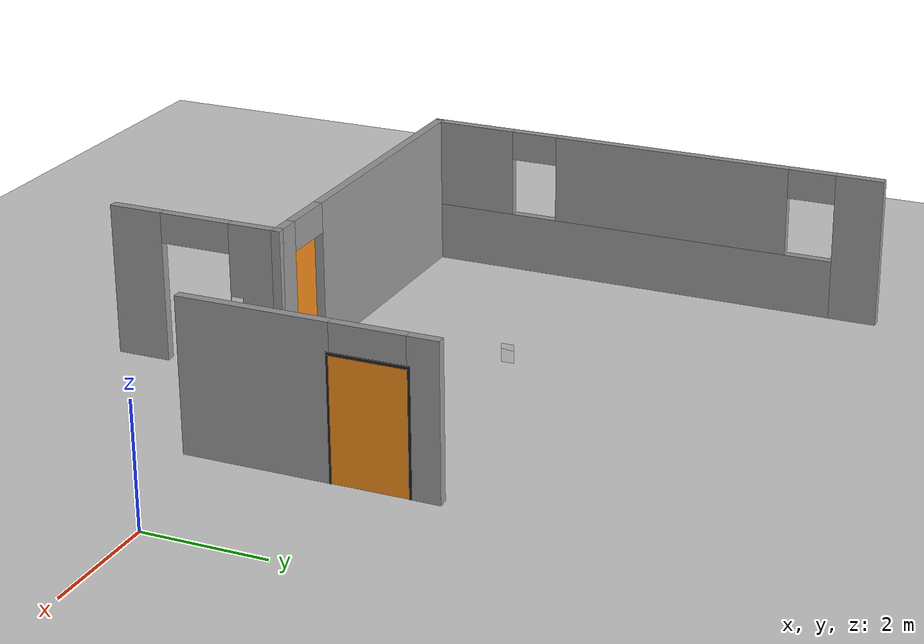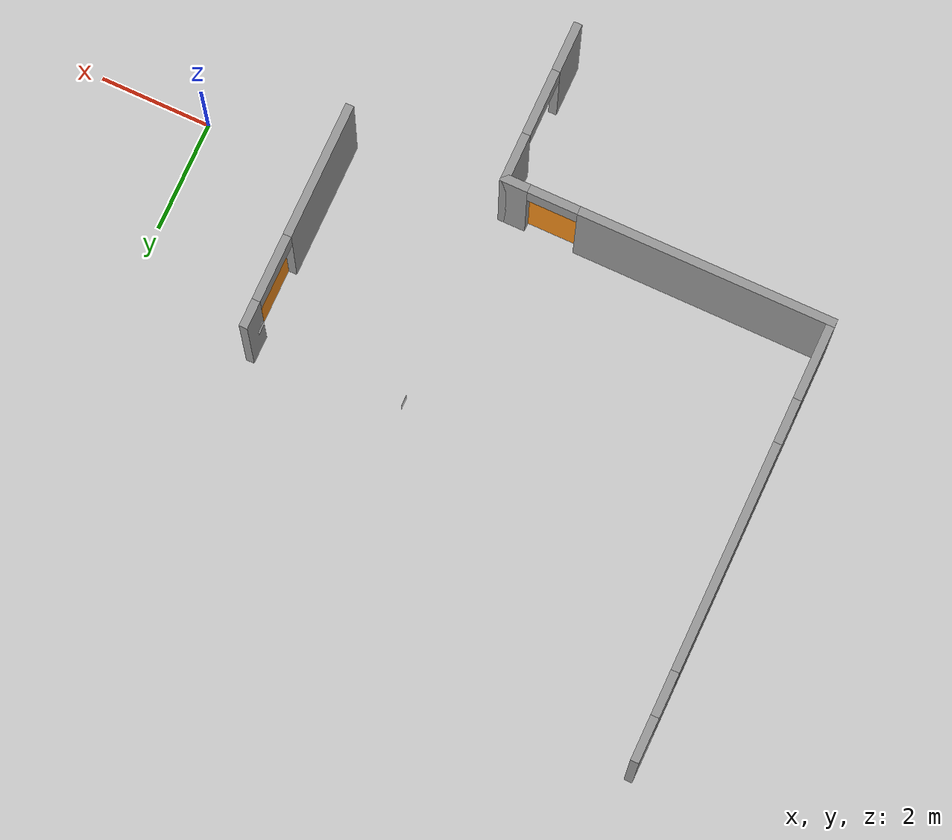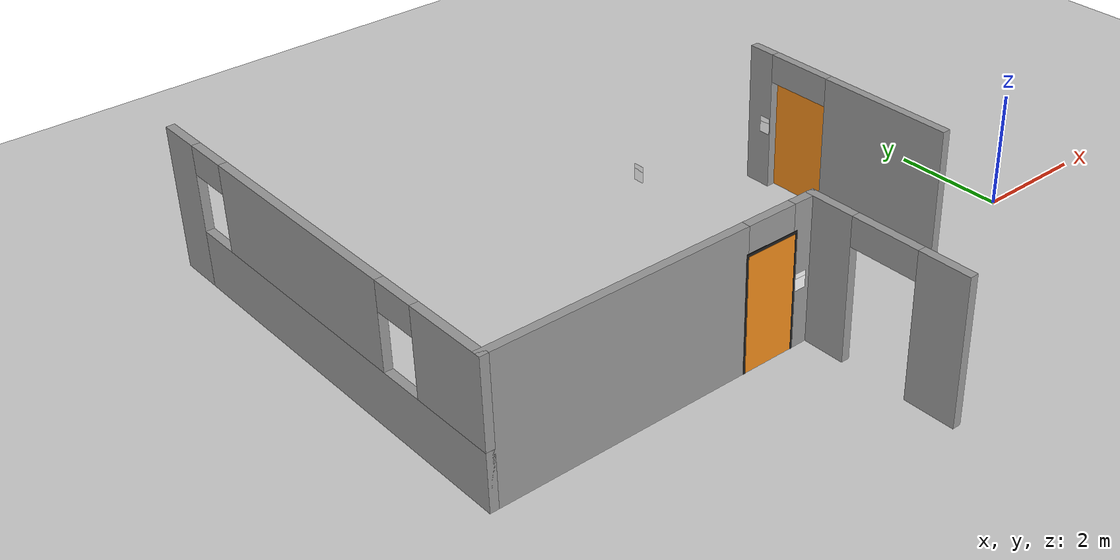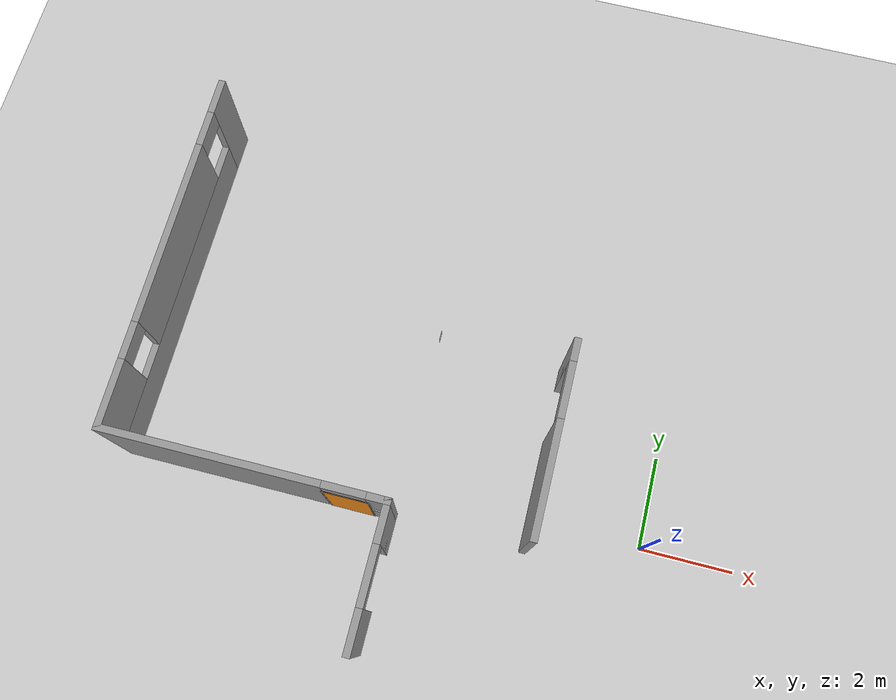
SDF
<sdf version="1.6">
 <world name="default">
  <model name="ground_plane">
   <static>1</static>
   <link name="link">
    <collision name="collision">
     <geometry><plane><normal>0 0 1</normal><size>100 100</size></plane></geometry>
     <surface><friction><ode><mu>100</mu><mu2>50</mu2></ode></friction></surface>
    </collision>
    <visual name="visual">
     <cast_shadows>0</cast_shadows>
     <geometry><plane><normal>0 0 1</normal><size>100 100</size></plane></geometry>
     <material>
      <script><uri>file://media/materials/scripts/gazebo.material</uri><name>Gazebo/Grey</name></script>
     </material>
    </visual>
   </link>
  </model>
  <model name="room_door_0">
   <link name="base_link">
    <inertial>
     <pose>0 0 1.00051 0 -0 0</pose>
     <mass>2001</mass>
     <inertia><ixx>464.85</ixx><ixy>0</ixy><ixz>0</ixz><iyy>4.0501</iyy><iyz>0</iyz><izz>463.8</izz></inertia>
    </inertial>
    <collision name="base_link_fixed_joint_lump__top_post_collision">
     <pose>0 0 2.025 0 -0 0</pose>
     <geometry><box><size>0.01 1 0.05</size></box></geometry>
    </collision>
    <collision name="base_link_fixed_joint_lump__left_post_collision_1">
     <pose>0 -0.48 1 0 -0 0</pose>
     <geometry><box><size>0.01 0.04 2</size></box></geometry>
    </collision>
    <collision name="base_link_fixed_joint_lump__right_post_collision_2">
     <pose>0 0.48 1 0 -0 0</pose>
     <geometry><box><size>0.01 0.04 2</size></box></geometry>
    </collision>
    <visual name="base_link_fixed_joint_lump__top_post_visual">
     <pose>0 0 2.025 0 -0 0</pose>
     <geometry><box><size>0.01 1 0.05</size></box></geometry>
     <material>
      <script><name>Gazebo/Black</name><uri>file://media/materials/scripts/gazebo.material</uri></script>
     </material>
    </visual>
    <visual name="base_link_fixed_joint_lump__left_post_visual_1">
     <pose>0 -0.48 1 0 -0 0</pose>
     <geometry><box><size>0.01 0.04 2</size></box></geometry>
     <material>
      <script><name>Gazebo/Black</name><uri>file://media/materials/scripts/gazebo.material</uri></script>
     </material>
    </visual>
    <visual name="base_link_fixed_joint_lump__right_post_visual_2">
     <pose>0 0.48 1 0 -0 0</pose>
     <geometry><box><size>0.01 0.04 2</size></box></geometry>
     <material>
      <script><name>Gazebo/Black</name><uri>file://media/materials/scripts/gazebo.material</uri></script>
     </material>
    </visual>
   </link>
   <link name="door_front">
    <pose>0.005 -0.46 1 0 -0 0</pose>
    <inertial>
     <mass>1</mass>
     <inertia><ixx>1</ixx><ixy>0</ixy><ixz>0</ixz><iyy>1</iyy><iyz>0</iyz><izz>1</izz></inertia>
    </inertial>
    <collision name="door_front_collision">
     <pose>-0.005 0.46 0.005 0 -0 0</pose>
     <geometry><box><size>0.01 0.92 1.99</size></box></geometry>
    </collision>
    <visual name="door_front_visual">
     <pose>-0.005 0.46 0.005 0 -0 0</pose>
     <geometry><box><size>0.01 0.92 1.99</size></box></geometry>
     <material>
      <script><name>Gazebo/Orange</name><uri>file://media/materials/scripts/gazebo.material</uri></script>
     </material>
    </visual>
   </link>
   <joint name="door_front_to_left_post" type="revolute">
    <child>door_front</child>
    <parent>base_link</parent>
    <axis>
     <xyz>0 0 1</xyz>
     <limit><lower>-3.14</lower><upper>0</upper><effort>1000</effort><velocity>100</velocity></limit>
     <dynamics>
      <damping>0.5</damping>
      <friction>0</friction>
      <spring_reference>0</spring_reference>
      <spring_stiffness>0</spring_stiffness>
     </dynamics>
     <use_parent_model_frame>0</use_parent_model_frame>
    </axis>
   </joint>
   <pose>-6.1318 -0.700552 -0 1e-06 -1e-06 -1.57113</pose>
  </model>
  <model name="room_door_clone_clone">
   <link name="base_link">
    <inertial>
     <pose>0 0 1.00051 0 -0 0</pose>
     <mass>2001</mass>
     <inertia><ixx>797.85</ixx><ixy>0</ixy><ixz>0</ixz><iyy>4.0501</iyy><iyz>0</iyz><izz>796.8</izz></inertia>
    </inertial>
    <collision name="base_link_fixed_joint_lump__top_post_collision">
     <pose>0 0 2.025 0 -0 0</pose>
     <geometry><box><size>0.01 1.3 0.05</size></box></geometry>
    </collision>
    <collision name="base_link_fixed_joint_lump__left_post_collision_1">
     <pose>0 -0.63 1 0 -0 0</pose>
     <geometry><box><size>0.01 0.04 2</size></box></geometry>
    </collision>
    <collision name="base_link_fixed_joint_lump__right_post_collision_2">
     <pose>0 0.63 1 0 -0 0</pose>
     <geometry><box><size>0.01 0.04 2</size></box></geometry>
    </collision>
    <visual name="base_link_fixed_joint_lump__top_post_visual">
     <pose>0 0 2.025 0 -0 0</pose>
     <geometry><box><size>0.01 1.3 0.05</size></box></geometry>
     <material>
      <script><name>Gazebo/Black</name><uri>file://media/materials/scripts/gazebo.material</uri></script>
     </material>
    </visual>
    <visual name="base_link_fixed_joint_lump__left_post_visual_1">
     <pose>0 -0.63 1 0 -0 0</pose>
     <geometry><box><size>0.01 0.04 2</size></box></geometry>
     <material>
      <script><name>Gazebo/Black</name><uri>file://media/materials/scripts/gazebo.material</uri></script>
     </material>
    </visual>
    <visual name="base_link_fixed_joint_lump__right_post_visual_2">
     <pose>0 0.63 1 0 -0 0</pose>
     <geometry><box><size>0.01 0.04 2</size></box></geometry>
     <material>
      <script><name>Gazebo/Black</name><uri>file://media/materials/scripts/gazebo.material</uri></script>
     </material>
    </visual>
   </link>
   <link name="door_front">
    <pose>0.005 0.61 1 0 -0 0</pose>
    <inertial>
     <mass>1</mass>
     <inertia><ixx>1</ixx><ixy>0</ixy><ixz>0</ixz><iyy>1</iyy><iyz>0</iyz><izz>1</izz></inertia>
    </inertial>
    <collision name="door_front_collision">
     <pose>-0.005 -0.61 0.005 0 -0 0</pose>
     <geometry><box><size>0.01 1.22 1.99</size></box></geometry>
    </collision>
    <visual name="door_front_visual">
     <pose>-0.005 -0.61 0.005 0 -0 0</pose>
     <geometry><box><size>0.01 1.22 1.99</size></box></geometry>
     <material>
      <script><name>Gazebo/Orange</name><uri>file://media/materials/scripts/gazebo.material</uri></script>
     </material>
    </visual>
   </link>
   <joint name="door_front_to_right_post" type="revolute">
    <child>door_front</child>
    <parent>base_link</parent>
    <axis>
     <xyz>0 0 1</xyz>
     <limit><lower>0</lower><upper>3.14</upper><effort>1000</effort><velocity>100</velocity></limit>
     <dynamics>
      <damping>0.5</damping>
      <friction>0</friction>
      <spring_reference>0</spring_reference>
      <spring_stiffness>0</spring_stiffness>
     </dynamics>
     <use_parent_model_frame>0</use_parent_model_frame>
    </axis>
   </joint>
   <pose>-2.33309 2.35384 -5e-06 1e-06 0 3e-06</pose>
  </model>
  <model name="hospital_walls">
   <link name="Wall_21">
    <pose>-2.425 1.425 0 0 -0 1.5708</pose>
    <visual name="Wall_21_Visual_2">
     <pose>0.975 0 2.25 0 -0 0</pose>
     <geometry><box><size>1.2 0.15 0.5</size></box></geometry>
     <material>
      <script><uri>file://media/materials/scripts/gazebo.material</uri><name>Gazebo/Grey</name></script>
      <ambient>1 1 1 1</ambient>
      <shader type="pixel"/>
     </material>
     <meta><layer>0</layer></meta>
    </visual>
    <visual name="Wall_21_Visual_1">
     <pose>1.825 0 1.25 0 -0 0</pose>
     <geometry><box><size>0.5 0.15 2.5</size></box></geometry>
     <material>
      <script><uri>file://media/materials/scripts/gazebo.material</uri><name>Gazebo/Grey</name></script>
      <ambient>1 1 1 1</ambient>
      <shader type="pixel"/>
     </material>
     <meta><layer>0</layer></meta>
    </visual>
    <visual name="Wall_21_Visual_0">
     <pose>-0.85 0 1.25 0 -0 0</pose>
     <geometry><box><size>2.45 0.15 2.5</size></box></geometry>
     <material>
      <script><uri>file://media/materials/scripts/gazebo.material</uri><name>Gazebo/Grey</name></script>
      <ambient>1 1 1 1</ambient>
      <shader type="pixel"/>
     </material>
     <meta><layer>0</layer></meta>
    </visual>
    <collision name="Wall_21_Collision_2">
     <pose>0.975 0 2.25 0 -0 0</pose>
     <geometry><box><size>1.2 0.15 0.5</size></box></geometry>
     <surface>
      <friction>
       <ode><mu>1</mu><mu2>1</mu2><fdir1>0 0 0</fdir1><slip1>0</slip1><slip2>0</slip2></ode>
       <torsional>
        <coefficient>1</coefficient>
        <patch_radius>0</patch_radius>
        <surface_radius>0</surface_radius>
        <use_patch_radius>1</use_patch_radius>
        <ode><slip>0</slip></ode>
       </torsional>
      </friction>
      <bounce><restitution_coefficient>0</restitution_coefficient><threshold>1e+06</threshold></bounce>
      <contact>
       <collide_without_contact>0</collide_without_contact>
       <collide_without_contact_bitmask>1</collide_without_contact_bitmask>
       <collide_bitmask>1</collide_bitmask>
       <ode>
        <soft_cfm>0</soft_cfm>
        <soft_erp>0.2</soft_erp>
        <kp>1e+13</kp>
        <kd>1</kd>
        <max_vel>0.01</max_vel>
        <min_depth>0</min_depth>
       </ode>
       <bullet>
        <split_impulse>1</split_impulse>
        <split_impulse_penetration_threshold>-0.01</split_impulse_penetration_threshold>
        <soft_cfm>0</soft_cfm>
        <soft_erp>0.2</soft_erp>
        <kp>1e+13</kp>
        <kd>1</kd>
       </bullet>
      </contact>
     </surface>
    </collision>
    <collision name="Wall_21_Collision_0">
     <pose>-0.85 0 1.25 0 -0 0</pose>
     <geometry><box><size>2.45 0.15 2.5</size></box></geometry>
     <surface>
      <friction>
       <ode><mu>1</mu><mu2>1</mu2><fdir1>0 0 0</fdir1><slip1>0</slip1><slip2>0</slip2></ode>
       <torsional>
        <coefficient>1</coefficient>
        <patch_radius>0</patch_radius>
        <surface_radius>0</surface_radius>
        <use_patch_radius>1</use_patch_radius>
        <ode><slip>0</slip></ode>
       </torsional>
      </friction>
      <bounce><restitution_coefficient>0</restitution_coefficient><threshold>1e+06</threshold></bounce>
      <contact>
       <collide_without_contact>0</collide_without_contact>
       <collide_without_contact_bitmask>1</collide_without_contact_bitmask>
       <collide_bitmask>1</collide_bitmask>
       <ode>
        <soft_cfm>0</soft_cfm>
        <soft_erp>0.2</soft_erp>
        <kp>1e+13</kp>
        <kd>1</kd>
        <max_vel>0.01</max_vel>
        <min_depth>0</min_depth>
       </ode>
       <bullet>
        <split_impulse>1</split_impulse>
        <split_impulse_penetration_threshold>-0.01</split_impulse_penetration_threshold>
        <soft_cfm>0</soft_cfm>
        <soft_erp>0.2</soft_erp>
        <kp>1e+13</kp>
        <kd>1</kd>
       </bullet>
      </contact>
     </surface>
    </collision>
    <collision name="Wall_21_Collision_1">
     <pose>1.825 0 1.25 0 -0 0</pose>
     <geometry><box><size>0.5 0.15 2.5</size></box></geometry>
     <surface>
      <friction>
       <ode><mu>1</mu><mu2>1</mu2><fdir1>0 0 0</fdir1><slip1>0</slip1><slip2>0</slip2></ode>
       <torsional>
        <coefficient>1</coefficient>
        <patch_radius>0</patch_radius>
        <surface_radius>0</surface_radius>
        <use_patch_radius>1</use_patch_radius>
        <ode><slip>0</slip></ode>
       </torsional>
      </friction>
      <bounce><restitution_coefficient>0</restitution_coefficient><threshold>1e+06</threshold></bounce>
      <contact>
       <collide_without_contact>0</collide_without_contact>
       <collide_without_contact_bitmask>1</collide_without_contact_bitmask>
       <collide_bitmask>1</collide_bitmask>
       <ode>
        <soft_cfm>0</soft_cfm>
        <soft_erp>0.2</soft_erp>
        <kp>1e+13</kp>
        <kd>1</kd>
        <max_vel>0.01</max_vel>
        <min_depth>0</min_depth>
       </ode>
       <bullet>
        <split_impulse>1</split_impulse>
        <split_impulse_penetration_threshold>-0.01</split_impulse_penetration_threshold>
        <soft_cfm>0</soft_cfm>
        <soft_erp>0.2</soft_erp>
        <kp>1e+13</kp>
        <kd>1</kd>
       </bullet>
      </contact>
     </surface>
    </collision>
   </link>
   <link name="Wall_4">
    <pose>-11.125 3.35 0 0 0 -1.5708</pose>
    <inertial>
     <mass>1</mass>
     <inertia><ixx>1</ixx><ixy>0</ixy><ixz>0</ixz><iyy>1</iyy><iyz>0</iyz><izz>1</izz></inertia>
    </inertial>
    <visual name="Wall_4_Visual_3">
     <pose>3.25 0 1.75 0 -0 0</pose>
     <geometry><box><size>1.5 0.15 1.5</size></box></geometry>
     <material>
      <script><uri>file://media/materials/scripts/gazebo.material</uri><name>Gazebo/Grey</name></script>
      <ambient>1 1 1 1</ambient>
      <shader type="vertex"><normal_map>__default__</normal_map></shader>
      <diffuse>0.7 0.7 0.7 1</diffuse>
      <specular>0.01 0.01 0.01 1</specular>
      <emissive>0 0 0 1</emissive>
     </material>
     <meta><layer>0</layer></meta>
    </visual>
    <visual name="Wall_4_Visual_2">
     <pose>-0.35 0 1.75 0 -0 0</pose>
     <geometry><box><size>4.1 0.15 1.5</size></box></geometry>
     <material>
      <script><uri>file://media/materials/scripts/gazebo.material</uri><name>Gazebo/Grey</name></script>
      <ambient>1 1 1 1</ambient>
      <shader type="vertex"><normal_map>__default__</normal_map></shader>
      <diffuse>0.7 0.7 0.7 1</diffuse>
      <specular>0.01 0.01 0.01 1</specular>
      <emissive>0 0 0 1</emissive>
     </material>
     <meta><layer>0</layer></meta>
    </visual>
    <visual name="Wall_4_Visual_5">
     <pose>2.1 0 2.25 0 -0 0</pose>
     <geometry><box><size>0.8 0.15 0.5</size></box></geometry>
     <material>
      <script><uri>file://media/materials/scripts/gazebo.material</uri><name>Gazebo/Grey</name></script>
      <ambient>1 1 1 1</ambient>
      <shader type="vertex"><normal_map>__default__</normal_map></shader>
      <diffuse>0.7 0.7 0.7 1</diffuse>
      <specular>0.01 0.01 0.01 1</specular>
      <emissive>0 0 0 1</emissive>
     </material>
     <meta><layer>0</layer></meta>
    </visual>
    <visual name="Wall_4_Visual_1">
     <pose>0.4 0 0.5 0 -0 0</pose>
     <geometry><box><size>7.2 0.15 1</size></box></geometry>
     <material>
      <script><uri>file://media/materials/scripts/gazebo.material</uri><name>Gazebo/Grey</name></script>
      <ambient>1 1 1 1</ambient>
      <shader type="vertex"><normal_map>__default__</normal_map></shader>
      <diffuse>0.7 0.7 0.7 1</diffuse>
      <specular>0.01 0.01 0.01 1</specular>
      <emissive>0 0 0 1</emissive>
     </material>
     <meta><layer>0</layer></meta>
    </visual>
    <visual name="Wall_4_Visual_4">
     <pose>-2.8 0 2.25 0 -0 0</pose>
     <geometry><box><size>0.8 0.15 0.5</size></box></geometry>
     <material>
      <script><uri>file://media/materials/scripts/gazebo.material</uri><name>Gazebo/Grey</name></script>
      <ambient>1 1 1 1</ambient>
      <shader type="vertex"><normal_map>__default__</normal_map></shader>
      <diffuse>0.7 0.7 0.7 1</diffuse>
      <specular>0.01 0.01 0.01 1</specular>
      <emissive>0 0 0 1</emissive>
     </material>
     <meta><layer>0</layer></meta>
    </visual>
    <visual name="Wall_4_Visual_0">
     <pose>-3.6 0 1.25 0 -0 0</pose>
     <geometry><box><size>0.8 0.15 2.5</size></box></geometry>
     <material>
      <script><uri>file://media/materials/scripts/gazebo.material</uri><name>Gazebo/Grey</name></script>
      <ambient>1 1 1 1</ambient>
      <shader type="vertex"><normal_map>__default__</normal_map></shader>
      <diffuse>0.7 0.7 0.7 1</diffuse>
      <specular>0.01 0.01 0.01 1</specular>
      <emissive>0 0 0 1</emissive>
     </material>
     <meta><layer>0</layer></meta>
    </visual>
    <collision name="Wall_4_Collision_4">
     <pose>-2.8 0 2.25 0 -0 0</pose>
     <geometry><box><size>0.8 0.15 0.5</size></box></geometry>
     <surface>
      <friction>
       <ode><mu>1</mu><mu2>1</mu2><fdir1>0 0 0</fdir1><slip1>0</slip1><slip2>0</slip2></ode>
       <torsional>
        <coefficient>1</coefficient>
        <patch_radius>0</patch_radius>
        <surface_radius>0</surface_radius>
        <use_patch_radius>1</use_patch_radius>
        <ode><slip>0</slip></ode>
       </torsional>
      </friction>
      <bounce><restitution_coefficient>0</restitution_coefficient><threshold>1e+06</threshold></bounce>
      <contact>
       <collide_without_contact>0</collide_without_contact>
       <collide_without_contact_bitmask>1</collide_without_contact_bitmask>
       <collide_bitmask>1</collide_bitmask>
       <ode>
        <soft_cfm>0</soft_cfm>
        <soft_erp>0.2</soft_erp>
        <kp>1e+13</kp>
        <kd>1</kd>
        <max_vel>0.01</max_vel>
        <min_depth>0</min_depth>
       </ode>
       <bullet>
        <split_impulse>1</split_impulse>
        <split_impulse_penetration_threshold>-0.01</split_impulse_penetration_threshold>
        <soft_cfm>0</soft_cfm>
        <soft_erp>0.2</soft_erp>
        <kp>1e+13</kp>
        <kd>1</kd>
       </bullet>
      </contact>
     </surface>
    </collision>
    <collision name="Wall_4_Collision_5">
     <pose>2.1 0 2.25 0 -0 0</pose>
     <geometry><box><size>0.8 0.15 0.5</size></box></geometry>
     <surface>
      <friction>
       <ode><mu>1</mu><mu2>1</mu2><fdir1>0 0 0</fdir1><slip1>0</slip1><slip2>0</slip2></ode>
       <torsional>
        <coefficient>1</coefficient>
        <patch_radius>0</patch_radius>
        <surface_radius>0</surface_radius>
        <use_patch_radius>1</use_patch_radius>
        <ode><slip>0</slip></ode>
       </torsional>
      </friction>
      <bounce><restitution_coefficient>0</restitution_coefficient><threshold>1e+06</threshold></bounce>
      <contact>
       <collide_without_contact>0</collide_without_contact>
       <collide_without_contact_bitmask>1</collide_without_contact_bitmask>
       <collide_bitmask>1</collide_bitmask>
       <ode>
        <soft_cfm>0</soft_cfm>
        <soft_erp>0.2</soft_erp>
        <kp>1e+13</kp>
        <kd>1</kd>
        <max_vel>0.01</max_vel>
        <min_depth>0</min_depth>
       </ode>
       <bullet>
        <split_impulse>1</split_impulse>
        <split_impulse_penetration_threshold>-0.01</split_impulse_penetration_threshold>
        <soft_cfm>0</soft_cfm>
        <soft_erp>0.2</soft_erp>
        <kp>1e+13</kp>
        <kd>1</kd>
       </bullet>
      </contact>
     </surface>
    </collision>
    <collision name="Wall_4_Collision_0">
     <pose>-3.6 0 1.25 0 -0 0</pose>
     <geometry><box><size>0.8 0.15 2.5</size></box></geometry>
     <surface>
      <friction>
       <ode><mu>1</mu><mu2>1</mu2><fdir1>0 0 0</fdir1><slip1>0</slip1><slip2>0</slip2></ode>
       <torsional>
        <coefficient>1</coefficient>
        <patch_radius>0</patch_radius>
        <surface_radius>0</surface_radius>
        <use_patch_radius>1</use_patch_radius>
        <ode><slip>0</slip></ode>
       </torsional>
      </friction>
      <bounce><restitution_coefficient>0</restitution_coefficient><threshold>1e+06</threshold></bounce>
      <contact>
       <collide_without_contact>0</collide_without_contact>
       <collide_without_contact_bitmask>1</collide_without_contact_bitmask>
       <collide_bitmask>1</collide_bitmask>
       <ode>
        <soft_cfm>0</soft_cfm>
        <soft_erp>0.2</soft_erp>
        <kp>1e+13</kp>
        <kd>1</kd>
        <max_vel>0.01</max_vel>
        <min_depth>0</min_depth>
       </ode>
       <bullet>
        <split_impulse>1</split_impulse>
        <split_impulse_penetration_threshold>-0.01</split_impulse_penetration_threshold>
        <soft_cfm>0</soft_cfm>
        <soft_erp>0.2</soft_erp>
        <kp>1e+13</kp>
        <kd>1</kd>
       </bullet>
      </contact>
     </surface>
    </collision>
    <collision name="Wall_4_Collision_3">
     <pose>3.25 0 1.75 0 -0 0</pose>
     <geometry><box><size>1.5 0.15 1.5</size></box></geometry>
     <surface>
      <friction>
       <ode><mu>1</mu><mu2>1</mu2><fdir1>0 0 0</fdir1><slip1>0</slip1><slip2>0</slip2></ode>
       <torsional>
        <coefficient>1</coefficient>
        <patch_radius>0</patch_radius>
        <surface_radius>0</surface_radius>
        <use_patch_radius>1</use_patch_radius>
        <ode><slip>0</slip></ode>
       </torsional>
      </friction>
      <bounce><restitution_coefficient>0</restitution_coefficient><threshold>1e+06</threshold></bounce>
      <contact>
       <collide_without_contact>0</collide_without_contact>
       <collide_without_contact_bitmask>1</collide_without_contact_bitmask>
       <collide_bitmask>1</collide_bitmask>
       <ode>
        <soft_cfm>0</soft_cfm>
        <soft_erp>0.2</soft_erp>
        <kp>1e+13</kp>
        <kd>1</kd>
        <max_vel>0.01</max_vel>
        <min_depth>0</min_depth>
       </ode>
       <bullet>
        <split_impulse>1</split_impulse>
        <split_impulse_penetration_threshold>-0.01</split_impulse_penetration_threshold>
        <soft_cfm>0</soft_cfm>
        <soft_erp>0.2</soft_erp>
        <kp>1e+13</kp>
        <kd>1</kd>
       </bullet>
      </contact>
     </surface>
    </collision>
    <collision name="Wall_4_Collision_1">
     <pose>0.4 0 0.5 0 -0 0</pose>
     <geometry><box><size>7.2 0.15 1</size></box></geometry>
     <surface>
      <friction>
       <ode><mu>1</mu><mu2>1</mu2><fdir1>0 0 0</fdir1><slip1>0</slip1><slip2>0</slip2></ode>
       <torsional>
        <coefficient>1</coefficient>
        <patch_radius>0</patch_radius>
        <surface_radius>0</surface_radius>
        <use_patch_radius>1</use_patch_radius>
        <ode><slip>0</slip></ode>
       </torsional>
      </friction>
      <bounce><restitution_coefficient>0</restitution_coefficient><threshold>1e+06</threshold></bounce>
      <contact>
       <collide_without_contact>0</collide_without_contact>
       <collide_without_contact_bitmask>1</collide_without_contact_bitmask>
       <collide_bitmask>1</collide_bitmask>
       <ode>
        <soft_cfm>0</soft_cfm>
        <soft_erp>0.2</soft_erp>
        <kp>1e+13</kp>
        <kd>1</kd>
        <max_vel>0.01</max_vel>
        <min_depth>0</min_depth>
       </ode>
       <bullet>
        <split_impulse>1</split_impulse>
        <split_impulse_penetration_threshold>-0.01</split_impulse_penetration_threshold>
        <soft_cfm>0</soft_cfm>
        <soft_erp>0.2</soft_erp>
        <kp>1e+13</kp>
        <kd>1</kd>
       </bullet>
      </contact>
     </surface>
    </collision>
    <collision name="Wall_4_Collision_2">
     <pose>-0.35 0 1.75 0 -0 0</pose>
     <geometry><box><size>4.1 0.15 1.5</size></box></geometry>
     <surface>
      <friction>
       <ode><mu>1</mu><mu2>1</mu2><fdir1>0 0 0</fdir1><slip1>0</slip1><slip2>0</slip2></ode>
       <torsional>
        <coefficient>1</coefficient>
        <patch_radius>0</patch_radius>
        <surface_radius>0</surface_radius>
        <use_patch_radius>1</use_patch_radius>
        <ode><slip>0</slip></ode>
       </torsional>
      </friction>
      <bounce><restitution_coefficient>0</restitution_coefficient><threshold>1e+06</threshold></bounce>
      <contact>
       <collide_without_contact>0</collide_without_contact>
       <collide_without_contact_bitmask>1</collide_without_contact_bitmask>
       <collide_bitmask>1</collide_bitmask>
       <ode>
        <soft_cfm>0</soft_cfm>
        <soft_erp>0.2</soft_erp>
        <kp>1e+13</kp>
        <kd>1</kd>
        <max_vel>0.01</max_vel>
        <min_depth>0</min_depth>
       </ode>
       <bullet>
        <split_impulse>1</split_impulse>
        <split_impulse_penetration_threshold>-0.01</split_impulse_penetration_threshold>
        <soft_cfm>0</soft_cfm>
        <soft_erp>0.2</soft_erp>
        <kp>1e+13</kp>
        <kd>1</kd>
       </bullet>
      </contact>
     </surface>
    </collision>
   </link>
   <link name="Wall_5">
    <pose>-8.2 -0.575 0 0 -0 0</pose>
    <visual name="Wall_5_Visual_1">
     <pose>2.75 0 1.25 0 -0 0</pose>
     <geometry><box><size>0.5 0.15 2.5</size></box></geometry>
     <material>
      <script><uri>file://media/materials/scripts/gazebo.material</uri><name>Gazebo/Grey</name></script>
      <ambient>1 1 1 1</ambient>
      <shader type="pixel"/>
     </material>
     <meta><layer>0</layer></meta>
    </visual>
    <visual name="Wall_5_Visual_0">
     <pose>-0.7 0 1.25 0 -0 0</pose>
     <geometry><box><size>4.6 0.15 2.5</size></box></geometry>
     <material>
      <script><uri>file://media/materials/scripts/gazebo.material</uri><name>Gazebo/Grey</name></script>
      <ambient>1 1 1 1</ambient>
      <shader type="pixel"/>
     </material>
     <meta><layer>0</layer></meta>
    </visual>
    <visual name="Wall_5_Visual_2">
     <pose>2.05 0 2.25 0 -0 0</pose>
     <geometry><box><size>0.9 0.15 0.5</size></box></geometry>
     <material>
      <script><uri>file://media/materials/scripts/gazebo.material</uri><name>Gazebo/Grey</name></script>
      <ambient>1 1 1 1</ambient>
      <shader type="pixel"/>
     </material>
     <meta><layer>0</layer></meta>
    </visual>
    <collision name="Wall_5_Collision_2">
     <pose>2.05 0 2.25 0 -0 0</pose>
     <geometry><box><size>0.9 0.15 0.5</size></box></geometry>
     <surface>
      <friction>
       <ode><mu>1</mu><mu2>1</mu2><fdir1>0 0 0</fdir1><slip1>0</slip1><slip2>0</slip2></ode>
       <torsional>
        <coefficient>1</coefficient>
        <patch_radius>0</patch_radius>
        <surface_radius>0</surface_radius>
        <use_patch_radius>1</use_patch_radius>
        <ode><slip>0</slip></ode>
       </torsional>
      </friction>
      <bounce><restitution_coefficient>0</restitution_coefficient><threshold>1e+06</threshold></bounce>
      <contact>
       <collide_without_contact>0</collide_without_contact>
       <collide_without_contact_bitmask>1</collide_without_contact_bitmask>
       <collide_bitmask>1</collide_bitmask>
       <ode>
        <soft_cfm>0</soft_cfm>
        <soft_erp>0.2</soft_erp>
        <kp>1e+13</kp>
        <kd>1</kd>
        <max_vel>0.01</max_vel>
        <min_depth>0</min_depth>
       </ode>
       <bullet>
        <split_impulse>1</split_impulse>
        <split_impulse_penetration_threshold>-0.01</split_impulse_penetration_threshold>
        <soft_cfm>0</soft_cfm>
        <soft_erp>0.2</soft_erp>
        <kp>1e+13</kp>
        <kd>1</kd>
       </bullet>
      </contact>
     </surface>
    </collision>
    <collision name="Wall_5_Collision_1">
     <pose>2.75 0 1.25 0 -0 0</pose>
     <geometry><box><size>0.5 0.15 2.5</size></box></geometry>
     <surface>
      <friction>
       <ode><mu>1</mu><mu2>1</mu2><fdir1>0 0 0</fdir1><slip1>0</slip1><slip2>0</slip2></ode>
       <torsional>
        <coefficient>1</coefficient>
        <patch_radius>0</patch_radius>
        <surface_radius>0</surface_radius>
        <use_patch_radius>1</use_patch_radius>
        <ode><slip>0</slip></ode>
       </torsional>
      </friction>
      <bounce><restitution_coefficient>0</restitution_coefficient><threshold>1e+06</threshold></bounce>
      <contact>
       <collide_without_contact>0</collide_without_contact>
       <collide_without_contact_bitmask>1</collide_without_contact_bitmask>
       <collide_bitmask>1</collide_bitmask>
       <ode>
        <soft_cfm>0</soft_cfm>
        <soft_erp>0.2</soft_erp>
        <kp>1e+13</kp>
        <kd>1</kd>
        <max_vel>0.01</max_vel>
        <min_depth>0</min_depth>
       </ode>
       <bullet>
        <split_impulse>1</split_impulse>
        <split_impulse_penetration_threshold>-0.01</split_impulse_penetration_threshold>
        <soft_cfm>0</soft_cfm>
        <soft_erp>0.2</soft_erp>
        <kp>1e+13</kp>
        <kd>1</kd>
       </bullet>
      </contact>
     </surface>
    </collision>
    <collision name="Wall_5_Collision_0">
     <pose>-0.7 0 1.25 0 -0 0</pose>
     <geometry><box><size>4.6 0.15 2.5</size></box></geometry>
     <surface>
      <friction>
       <ode><mu>1</mu><mu2>1</mu2><fdir1>0 0 0</fdir1><slip1>0</slip1><slip2>0</slip2></ode>
       <torsional>
        <coefficient>1</coefficient>
        <patch_radius>0</patch_radius>
        <surface_radius>0</surface_radius>
        <use_patch_radius>1</use_patch_radius>
        <ode><slip>0</slip></ode>
       </torsional>
      </friction>
      <bounce><restitution_coefficient>0</restitution_coefficient><threshold>1e+06</threshold></bounce>
      <contact>
       <collide_without_contact>0</collide_without_contact>
       <collide_without_contact_bitmask>1</collide_without_contact_bitmask>
       <collide_bitmask>1</collide_bitmask>
       <ode>
        <soft_cfm>0</soft_cfm>
        <soft_erp>0.2</soft_erp>
        <kp>1e+13</kp>
        <kd>1</kd>
        <max_vel>0.01</max_vel>
        <min_depth>0</min_depth>
       </ode>
       <bullet>
        <split_impulse>1</split_impulse>
        <split_impulse_penetration_threshold>-0.01</split_impulse_penetration_threshold>
        <soft_cfm>0</soft_cfm>
        <soft_erp>0.2</soft_erp>
        <kp>1e+13</kp>
        <kd>1</kd>
       </bullet>
      </contact>
     </surface>
    </collision>
   </link>
   <link name="Wall_57">
    <pose>-5.275 -2 0 0 -0 1.5708</pose>
    <visual name="Wall_57_Visual_0">
     <pose>-1.05 0 1.25 0 -0 0</pose>
     <geometry><box><size>0.9 0.15 2.5</size></box></geometry>
     <material>
      <script><uri>file://media/materials/scripts/gazebo.material</uri><name>Gazebo/Grey</name></script>
      <ambient>1 1 1 1</ambient>
      <shader type="pixel"/>
     </material>
     <meta><layer>0</layer></meta>
    </visual>
    <visual name="Wall_57_Visual_1">
     <pose>1.05 0 1.25 0 -0 0</pose>
     <geometry><box><size>0.9 0.15 2.5</size></box></geometry>
     <material>
      <script><uri>file://media/materials/scripts/gazebo.material</uri><name>Gazebo/Grey</name></script>
      <ambient>1 1 1 1</ambient>
      <shader type="pixel"/>
     </material>
     <meta><layer>0</layer></meta>
    </visual>
    <visual name="Wall_57_Visual_2">
     <pose>0 0 2.25 0 -0 0</pose>
     <geometry><box><size>1.2 0.15 0.5</size></box></geometry>
     <material>
      <script><uri>file://media/materials/scripts/gazebo.material</uri><name>Gazebo/Grey</name></script>
      <ambient>1 1 1 1</ambient>
      <shader type="pixel"/>
     </material>
     <meta><layer>0</layer></meta>
    </visual>
    <collision name="Wall_57_Collision_1">
     <pose>1.05 0 1.25 0 -0 0</pose>
     <geometry><box><size>0.9 0.15 2.5</size></box></geometry>
     <surface>
      <friction>
       <ode><mu>1</mu><mu2>1</mu2><fdir1>0 0 0</fdir1><slip1>0</slip1><slip2>0</slip2></ode>
       <torsional>
        <coefficient>1</coefficient>
        <patch_radius>0</patch_radius>
        <surface_radius>0</surface_radius>
        <use_patch_radius>1</use_patch_radius>
        <ode><slip>0</slip></ode>
       </torsional>
      </friction>
      <bounce><restitution_coefficient>0</restitution_coefficient><threshold>1e+06</threshold></bounce>
      <contact>
       <collide_without_contact>0</collide_without_contact>
       <collide_without_contact_bitmask>1</collide_without_contact_bitmask>
       <collide_bitmask>1</collide_bitmask>
       <ode>
        <soft_cfm>0</soft_cfm>
        <soft_erp>0.2</soft_erp>
        <kp>1e+13</kp>
        <kd>1</kd>
        <max_vel>0.01</max_vel>
        <min_depth>0</min_depth>
       </ode>
       <bullet>
        <split_impulse>1</split_impulse>
        <split_impulse_penetration_threshold>-0.01</split_impulse_penetration_threshold>
        <soft_cfm>0</soft_cfm>
        <soft_erp>0.2</soft_erp>
        <kp>1e+13</kp>
        <kd>1</kd>
       </bullet>
      </contact>
     </surface>
    </collision>
    <collision name="Wall_57_Collision_0">
     <pose>-1.05 0 1.25 0 -0 0</pose>
     <geometry><box><size>0.9 0.15 2.5</size></box></geometry>
     <surface>
      <friction>
       <ode><mu>1</mu><mu2>1</mu2><fdir1>0 0 0</fdir1><slip1>0</slip1><slip2>0</slip2></ode>
       <torsional>
        <coefficient>1</coefficient>
        <patch_radius>0</patch_radius>
        <surface_radius>0</surface_radius>
        <use_patch_radius>1</use_patch_radius>
        <ode><slip>0</slip></ode>
       </torsional>
      </friction>
      <bounce><restitution_coefficient>0</restitution_coefficient><threshold>1e+06</threshold></bounce>
      <contact>
       <collide_without_contact>0</collide_without_contact>
       <collide_without_contact_bitmask>1</collide_without_contact_bitmask>
       <collide_bitmask>1</collide_bitmask>
       <ode>
        <soft_cfm>0</soft_cfm>
        <soft_erp>0.2</soft_erp>
        <kp>1e+13</kp>
        <kd>1</kd>
        <max_vel>0.01</max_vel>
        <min_depth>0</min_depth>
       </ode>
       <bullet>
        <split_impulse>1</split_impulse>
        <split_impulse_penetration_threshold>-0.01</split_impulse_penetration_threshold>
        <soft_cfm>0</soft_cfm>
        <soft_erp>0.2</soft_erp>
        <kp>1e+13</kp>
        <kd>1</kd>
       </bullet>
      </contact>
     </surface>
    </collision>
    <collision name="Wall_57_Collision_2">
     <pose>0 0 2.25 0 -0 0</pose>
     <geometry><box><size>1.2 0.15 0.5</size></box></geometry>
     <surface>
      <friction>
       <ode><mu>1</mu><mu2>1</mu2><fdir1>0 0 0</fdir1><slip1>0</slip1><slip2>0</slip2></ode>
       <torsional>
        <coefficient>1</coefficient>
        <patch_radius>0</patch_radius>
        <surface_radius>0</surface_radius>
        <use_patch_radius>1</use_patch_radius>
        <ode><slip>0</slip></ode>
       </torsional>
      </friction>
      <bounce><restitution_coefficient>0</restitution_coefficient><threshold>1e+06</threshold></bounce>
      <contact>
       <collide_without_contact>0</collide_without_contact>
       <collide_without_contact_bitmask>1</collide_without_contact_bitmask>
       <collide_bitmask>1</collide_bitmask>
       <ode>
        <soft_cfm>0</soft_cfm>
        <soft_erp>0.2</soft_erp>
        <kp>1e+13</kp>
        <kd>1</kd>
        <max_vel>0.01</max_vel>
        <min_depth>0</min_depth>
       </ode>
       <bullet>
        <split_impulse>1</split_impulse>
        <split_impulse_penetration_threshold>-0.01</split_impulse_penetration_threshold>
        <soft_cfm>0</soft_cfm>
        <soft_erp>0.2</soft_erp>
        <kp>1e+13</kp>
        <kd>1</kd>
       </bullet>
      </contact>
     </surface>
    </collision>
   </link>
   <static>1</static>
   <pose>0.01191 -0.04531 0 0 -0 0</pose>
  </model>
  <model name="info_plate_clone_clone_5">
   <link name="info_plate">
    <inertial>
     <mass>1</mass>
     <inertia><ixx>1</ixx><ixy>0</ixy><ixz>0</ixz><iyy>1</iyy><iyz>0</iyz><izz>1</izz></inertia>
    </inertial>
    <visual name="info_plate_lower">
     <pose>0 0 0.105 0 -0 0</pose>
     <geometry><box><size>0.001 0.21 0.21</size></box></geometry>
     <material>
      <script>
       <uri>model://info_plate/materials/scripts</uri>
       <uri>model://info_plate/materials/textures</uri>
       <name>QR_Room/Office1</name>
      </script>
      <shader type="vertex"><normal_map>__default__</normal_map></shader>
      <ambient>1 1 1 1</ambient>
      <diffuse>1 1 1 1</diffuse>
      <specular>0 0 0 1</specular>
      <emissive>0 0 0 1</emissive>
     </material>
    </visual>
    <visual name="info_plate_upper">
     <pose>0 0 0.2485 0 -0 0</pose>
     <geometry><box><size>0.001 0.21 0.097</size></box></geometry>
     <material>
      <script>
       <uri>model://info_plate/materials/scripts</uri>
       <uri>model://info_plate/materials/textures</uri>
       <name>Room/Office1</name>
       <name>__default__</name>
      </script>
      <shader type="vertex"><normal_map>__default__</normal_map></shader>
      <ambient>1 1 1 1</ambient>
      <diffuse>1 1 1 1</diffuse>
      <specular>0 0 0 1</specular>
      <emissive>0 0 0 1</emissive>
     </material>
    </visual>
    <collision name="info_plate">
     <pose>0 0 0.1485 0 -0 0</pose>
     <geometry><box><size>0.001 0.21 0.297</size></box></geometry>
     <surface>
      <friction>
       <ode><mu>1</mu><mu2>1</mu2><fdir1>0 0 0</fdir1><slip1>0</slip1><slip2>0</slip2></ode>
       <torsional>
        <coefficient>1</coefficient>
        <patch_radius>0</patch_radius>
        <surface_radius>0</surface_radius>
        <use_patch_radius>1</use_patch_radius>
        <ode><slip>0</slip></ode>
       </torsional>
      </friction>
      <bounce><restitution_coefficient>0</restitution_coefficient><threshold>1e+06</threshold></bounce>
      <contact>
       <collide_without_contact>0</collide_without_contact>
       <collide_without_contact_bitmask>1</collide_without_contact_bitmask>
       <collide_bitmask>1</collide_bitmask>
       <ode>
        <soft_cfm>0</soft_cfm>
        <soft_erp>0.2</soft_erp>
        <kp>1e+13</kp>
        <kd>1</kd>
        <max_vel>0.01</max_vel>
        <min_depth>0</min_depth>
       </ode>
       <bullet>
        <split_impulse>1</split_impulse>
        <split_impulse_penetration_threshold>-0.01</split_impulse_penetration_threshold>
        <soft_cfm>0</soft_cfm>
        <soft_erp>0.2</soft_erp>
        <kp>1e+13</kp>
        <kd>1</kd>
       </bullet>
      </contact>
     </surface>
    </collision>
   </link>
   <static>1</static>
   <pose>-2.49416 3.07113 1 0 -0 0</pose>
  </model>
  <model name="info_plate_clone_clone_5_clone_1">
   <link name="info_plate">
    <inertial>
     <mass>1</mass>
     <inertia><ixx>1</ixx><ixy>0</ixy><ixz>0</ixz><iyy>1</iyy><iyz>0</iyz><izz>1</izz></inertia>
    </inertial>
    <visual name="info_plate_lower">
     <pose>0 0 0.105 0 -0 0</pose>
     <geometry><box><size>0.001 0.21 0.21</size></box></geometry>
     <material>
      <script>
       <uri>model://info_plate/materials/scripts</uri>
       <uri>model://info_plate/materials/textures</uri>
       <name>QR_Room/Canteen</name>
      </script>
      <shader type="vertex"><normal_map>__default__</normal_map></shader>
      <ambient>1 1 1 1</ambient>
      <diffuse>1 1 1 1</diffuse>
      <specular>0 0 0 1</specular>
      <emissive>0 0 0 1</emissive>
     </material>
    </visual>
    <visual name="info_plate_upper">
     <pose>0 0 0.2485 0 -0 0</pose>
     <geometry><box><size>0.001 0.21 0.097</size></box></geometry>
     <material>
      <script>
       <uri>model://info_plate/materials/scripts</uri>
       <uri>model://info_plate/materials/textures</uri>
       <name>Room/Canteen</name>
       <name>__default__</name>
      </script>
      <shader type="vertex"><normal_map>__default__</normal_map></shader>
      <ambient>1 1 1 1</ambient>
      <diffuse>1 1 1 1</diffuse>
      <specular>0 0 0 1</specular>
      <emissive>0 0 0 1</emissive>
     </material>
    </visual>
    <collision name="info_plate">
     <pose>0 0 0.1485 0 -0 0</pose>
     <geometry><box><size>0.001 0.21 0.297</size></box></geometry>
     <surface>
      <friction>
       <ode><mu>1</mu><mu2>1</mu2><fdir1>0 0 0</fdir1><slip1>0</slip1><slip2>0</slip2></ode>
       <torsional>
        <coefficient>1</coefficient>
        <patch_radius>0</patch_radius>
        <surface_radius>0</surface_radius>
        <use_patch_radius>1</use_patch_radius>
        <ode><slip>0</slip></ode>
       </torsional>
      </friction>
      <bounce><restitution_coefficient>0</restitution_coefficient><threshold>1e+06</threshold></bounce>
      <contact>
       <collide_without_contact>0</collide_without_contact>
       <collide_without_contact_bitmask>1</collide_without_contact_bitmask>
       <collide_bitmask>1</collide_bitmask>
       <ode>
        <soft_cfm>0</soft_cfm>
        <soft_erp>0.2</soft_erp>
        <kp>1e+13</kp>
        <kd>1</kd>
        <max_vel>0.01</max_vel>
        <min_depth>0</min_depth>
       </ode>
       <bullet>
        <split_impulse>1</split_impulse>
        <split_impulse_penetration_threshold>-0.01</split_impulse_penetration_threshold>
        <soft_cfm>0</soft_cfm>
        <soft_erp>0.2</soft_erp>
        <kp>1e+13</kp>
        <kd>1</kd>
       </bullet>
      </contact>
     </surface>
    </collision>
   </link>
   <static>1</static>
   <pose>-5.18447 3.2378 1 0 -0 0</pose>
  </model>
  <model name="info_plate_clone_clone_5_clone_1_clone">
   <link name="info_plate">
    <inertial>
     <mass>1</mass>
     <inertia><ixx>1</ixx><ixy>0</ixy><ixz>0</ixz><iyy>1</iyy><iyz>0</iyz><izz>1</izz></inertia>
    </inertial>
    <visual name="info_plate_lower">
     <pose>0 0 0.105 0 -0 0</pose>
     <geometry><box><size>0.001 0.21 0.21</size></box></geometry>
     <material>
      <script>
       <uri>model://info_plate/materials/scripts</uri>
       <uri>model://info_plate/materials/textures</uri>
       <name>QR_Room/Canteen</name>
      </script>
      <shader type="vertex"><normal_map>__default__</normal_map></shader>
      <ambient>1 1 1 1</ambient>
      <diffuse>1 1 1 1</diffuse>
      <specular>0 0 0 1</specular>
      <emissive>0 0 0 1</emissive>
     </material>
    </visual>
    <visual name="info_plate_upper">
     <pose>0 0 0.2485 0 -0 0</pose>
     <geometry><box><size>0.001 0.21 0.097</size></box></geometry>
     <material>
      <script>
       <uri>model://info_plate/materials/scripts</uri>
       <uri>model://info_plate/materials/textures</uri>
       <name>Room/Canteen</name>
       <name>__default__</name>
      </script>
      <shader type="vertex"><normal_map>__default__</normal_map></shader>
      <ambient>1 1 1 1</ambient>
      <diffuse>1 1 1 1</diffuse>
      <specular>0 0 0 1</specular>
      <emissive>0 0 0 1</emissive>
     </material>
    </visual>
    <collision name="info_plate">
     <pose>0 0 0.1485 0 -0 0</pose>
     <geometry><box><size>0.001 0.21 0.297</size></box></geometry>
     <surface>
      <friction>
       <ode><mu>1</mu><mu2>1</mu2><fdir1>0 0 0</fdir1><slip1>0</slip1><slip2>0</slip2></ode>
       <torsional>
        <coefficient>1</coefficient>
        <patch_radius>0</patch_radius>
        <surface_radius>0</surface_radius>
        <use_patch_radius>1</use_patch_radius>
        <ode><slip>0</slip></ode>
       </torsional>
      </friction>
      <bounce><restitution_coefficient>0</restitution_coefficient><threshold>1e+06</threshold></bounce>
      <contact>
       <collide_without_contact>0</collide_without_contact>
       <collide_without_contact_bitmask>1</collide_without_contact_bitmask>
       <collide_bitmask>1</collide_bitmask>
       <ode>
        <soft_cfm>0</soft_cfm>
        <soft_erp>0.2</soft_erp>
        <kp>1e+13</kp>
        <kd>1</kd>
        <max_vel>0.01</max_vel>
        <min_depth>0</min_depth>
       </ode>
       <bullet>
        <split_impulse>1</split_impulse>
        <split_impulse_penetration_threshold>-0.01</split_impulse_penetration_threshold>
        <soft_cfm>0</soft_cfm>
        <soft_erp>0.2</soft_erp>
        <kp>1e+13</kp>
        <kd>1</kd>
       </bullet>
      </contact>
     </surface>
    </collision>
   </link>
   <static>1</static>
   <pose>-5.51866 -0.701337 1 0 -0 1.57</pose>
  </model>
  <model name="info_plate_clone_clone_5_clone_1_clone_0">
   <link name="info_plate">
    <inertial>
     <mass>1</mass>
     <inertia><ixx>1</ixx><ixy>0</ixy><ixz>0</ixz><iyy>1</iyy><iyz>0</iyz><izz>1</izz></inertia>
    </inertial>
    <visual name="info_plate_lower">
     <pose>0 0 0.105 0 -0 0</pose>
     <geometry><box><size>0.001 0.21 0.21</size></box></geometry>
     <material>
      <script>
       <uri>model://info_plate/materials/scripts</uri>
       <uri>model://info_plate/materials/textures</uri>
       <name>QR_Room/Reception</name>
      </script>
      <shader type="vertex"><normal_map>__default__</normal_map></shader>
      <ambient>1 1 1 1</ambient>
      <diffuse>1 1 1 1</diffuse>
      <specular>0 0 0 1</specular>
      <emissive>0 0 0 1</emissive>
     </material>
    </visual>
    <visual name="info_plate_upper">
     <pose>0 0 0.2485 0 -0 0</pose>
     <geometry><box><size>0.001 0.21 0.097</size></box></geometry>
     <material>
      <script>
       <uri>model://info_plate/materials/scripts</uri>
       <uri>model://info_plate/materials/textures</uri>
       <name>Room/Reception</name>
       <name>__default__</name>
      </script>
      <shader type="vertex"><normal_map>__default__</normal_map></shader>
      <ambient>1 1 1 1</ambient>
      <diffuse>1 1 1 1</diffuse>
      <specular>0 0 0 1</specular>
      <emissive>0 0 0 1</emissive>
     </material>
    </visual>
    <collision name="info_plate">
     <pose>0 0 0.1485 0 -0 0</pose>
     <geometry><box><size>0.001 0.21 0.297</size></box></geometry>
     <surface>
      <friction>
       <ode><mu>1</mu><mu2>1</mu2><fdir1>0 0 0</fdir1><slip1>0</slip1><slip2>0</slip2></ode>
       <torsional>
        <coefficient>1</coefficient>
        <patch_radius>0</patch_radius>
        <surface_radius>0</surface_radius>
        <use_patch_radius>1</use_patch_radius>
        <ode><slip>0</slip></ode>
       </torsional>
      </friction>
      <bounce><restitution_coefficient>0</restitution_coefficient><threshold>1e+06</threshold></bounce>
      <contact>
       <collide_without_contact>0</collide_without_contact>
       <collide_without_contact_bitmask>1</collide_without_contact_bitmask>
       <collide_bitmask>1</collide_bitmask>
       <ode>
        <soft_cfm>0</soft_cfm>
        <soft_erp>0.2</soft_erp>
        <kp>1e+13</kp>
        <kd>1</kd>
        <max_vel>0.01</max_vel>
        <min_depth>0</min_depth>
       </ode>
       <bullet>
        <split_impulse>1</split_impulse>
        <split_impulse_penetration_threshold>-0.01</split_impulse_penetration_threshold>
        <soft_cfm>0</soft_cfm>
        <soft_erp>0.2</soft_erp>
        <kp>1e+13</kp>
        <kd>1</kd>
       </bullet>
      </contact>
     </surface>
    </collision>
   </link>
   <static>1</static>
   <pose>-5.18588 -1.33067 1 0 -0 0</pose>
  </model>
 </world>
</sdf>
